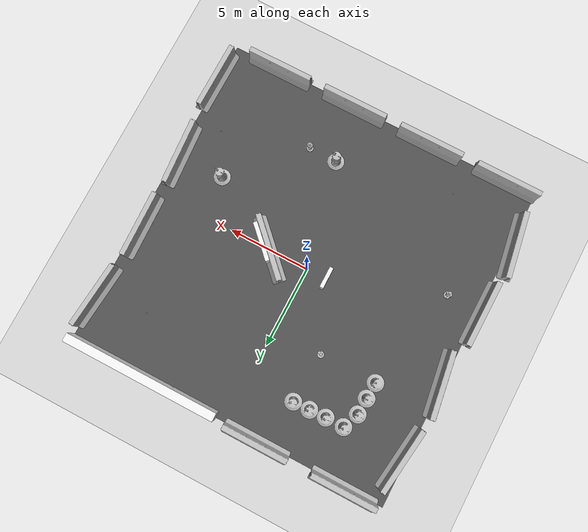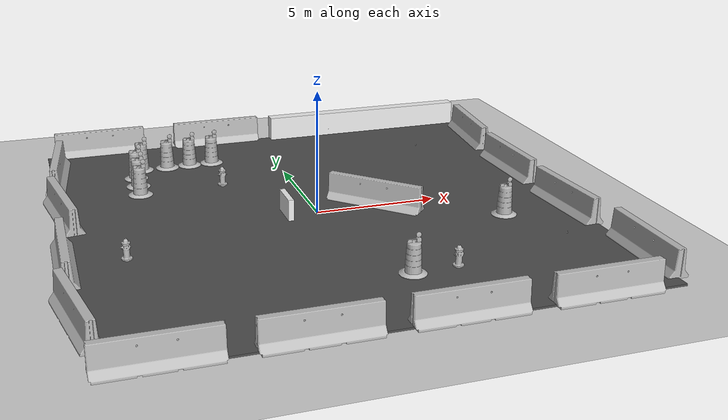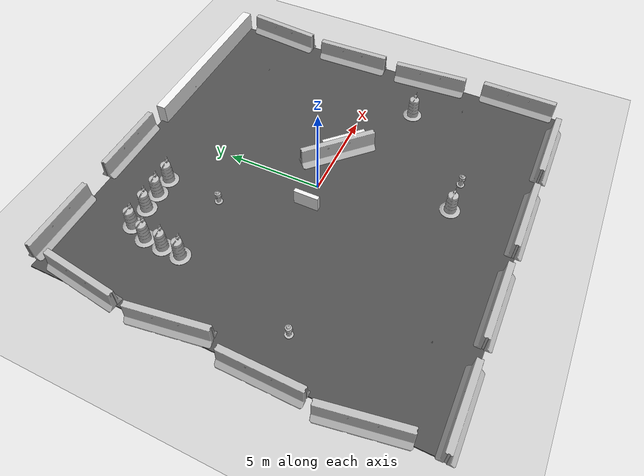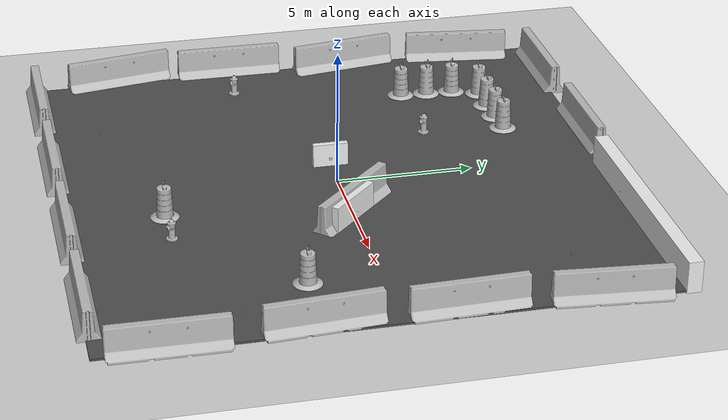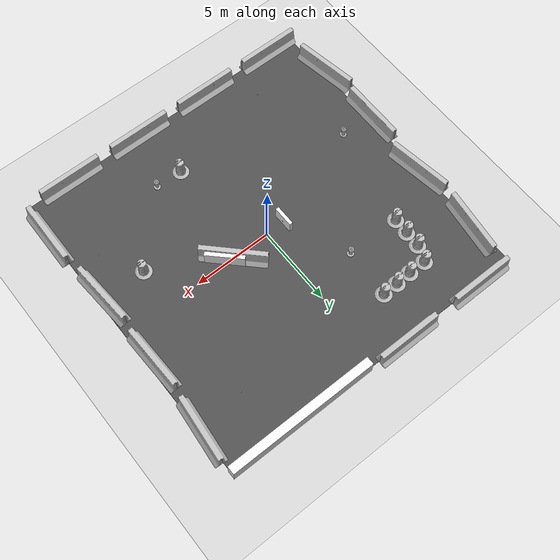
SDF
<sdf version="1.6">
 <world name="default">
  <light name="sun" type="directional">
   <pose>0 0 10 0 -0 0</pose>
   <diffuse>0.8 0.8 0.8 1</diffuse>
   <specular>0.2 0.2 0.2 1</specular>
   <attenuation>
    <range>1000</range>
    <constant>0.9</constant>
    <linear>0.01</linear>
    <quadratic>0.001</quadratic>
   </attenuation>
   <direction>-0.5 0.1 -0.9</direction>
  </light>
  <model name="ground_plane">
   <static>1</static>
   <link name="link">
    <collision name="collision">
     <geometry><plane><normal>0 0 1</normal><size>100 100</size></plane></geometry>
     <surface><friction><ode><mu>100</mu><mu2>50</mu2></ode></friction></surface>
    </collision>
    <visual name="visual">
     <cast_shadows>0</cast_shadows>
     <geometry><plane><normal>0 0 1</normal><size>100 100</size></plane></geometry>
     <material>
      <script><uri>file://media/materials/scripts/gazebo.material</uri><name>Gazebo/Grey</name></script>
     </material>
    </visual>
    <velocity_decay><linear>0</linear><angular>0</angular></velocity_decay>
   </link>
  </model>
  <physics name="default_physics" default="0" type="ode">
   <max_step_size>0.01</max_step_size>
   <real_time_factor>1</real_time_factor>
   <real_time_update_rate>100</real_time_update_rate>
  </physics>
  <scene><ambient>0.4 0.4 0.4 1</ambient><background>0.7 0.7 0.7 1</background><shadows>1</shadows></scene>
  <model name="jersey_barrier">
   <static>1</static>
   <link name="link">
    <visual name="visual">
     <geometry>
      <mesh><uri>model://jersey_barrier/meshes/jersey_barrier.dae</uri><scale>1 1 1</scale></mesh>
     </geometry>
    </visual>
    <collision name="upright">
     <pose>0 0 0.5715 0 -0 0</pose>
     <geometry><box><size>4.06542 0.3063 1.143</size></box></geometry>
    </collision>
    <collision name="base">
     <pose>0 0 0.032258 0 -0 0</pose>
     <geometry><box><size>4.06542 0.8107 0.064516</size></box></geometry>
    </collision>
    <collision name="base2">
     <pose>0 0 0.1 0 -0 0</pose>
     <geometry><box><size>4.06542 0.65 0.1</size></box></geometry>
    </collision>
    <collision name="base3">
     <pose>0 0 0.2 0 -0 0</pose>
     <geometry><box><size>4.06542 0.5 0.1</size></box></geometry>
    </collision>
    <collision name="left-angle">
     <pose>0 -0.224 0.2401 0.9 -0 0</pose>
     <geometry><box><size>4.06542 0.5 0.064516</size></box></geometry>
    </collision>
    <collision name="right-angle">
     <pose>0 0.224 0.2401 -0.9 0 0</pose>
     <geometry><box><size>4.06542 0.5 0.064516</size></box></geometry>
    </collision>
    <velocity_decay><linear>0</linear><angular>0</angular></velocity_decay>
   </link>
   <pose>-8 -10 0 0 -0 0</pose>
  </model>
  <model name="jersey_barrier_0">
   <static>1</static>
   <link name="link">
    <visual name="visual">
     <geometry>
      <mesh><uri>model://jersey_barrier/meshes/jersey_barrier.dae</uri><scale>1 1 1</scale></mesh>
     </geometry>
    </visual>
    <collision name="upright">
     <pose>0 0 0.5715 0 -0 0</pose>
     <geometry><box><size>4.06542 0.3063 1.143</size></box></geometry>
    </collision>
    <collision name="base">
     <pose>0 0 0.032258 0 -0 0</pose>
     <geometry><box><size>4.06542 0.8107 0.064516</size></box></geometry>
    </collision>
    <collision name="base2">
     <pose>0 0 0.1 0 -0 0</pose>
     <geometry><box><size>4.06542 0.65 0.1</size></box></geometry>
    </collision>
    <collision name="base3">
     <pose>0 0 0.2 0 -0 0</pose>
     <geometry><box><size>4.06542 0.5 0.1</size></box></geometry>
    </collision>
    <collision name="left-angle">
     <pose>0 -0.224 0.2401 0.9 -0 0</pose>
     <geometry><box><size>4.06542 0.5 0.064516</size></box></geometry>
    </collision>
    <collision name="right-angle">
     <pose>0 0.224 0.2401 -0.9 0 0</pose>
     <geometry><box><size>4.06542 0.5 0.064516</size></box></geometry>
    </collision>
    <velocity_decay><linear>0</linear><angular>0</angular></velocity_decay>
   </link>
   <pose>-3 -10 0 0 -0 0</pose>
  </model>
  <model name="jersey_barrier_1">
   <static>1</static>
   <link name="link">
    <visual name="visual">
     <geometry>
      <mesh><uri>model://jersey_barrier/meshes/jersey_barrier.dae</uri><scale>1 1 1</scale></mesh>
     </geometry>
    </visual>
    <collision name="upright">
     <pose>0 0 0.5715 0 -0 0</pose>
     <geometry><box><size>4.06542 0.3063 1.143</size></box></geometry>
    </collision>
    <collision name="base">
     <pose>0 0 0.032258 0 -0 0</pose>
     <geometry><box><size>4.06542 0.8107 0.064516</size></box></geometry>
    </collision>
    <collision name="base2">
     <pose>0 0 0.1 0 -0 0</pose>
     <geometry><box><size>4.06542 0.65 0.1</size></box></geometry>
    </collision>
    <collision name="base3">
     <pose>0 0 0.2 0 -0 0</pose>
     <geometry><box><size>4.06542 0.5 0.1</size></box></geometry>
    </collision>
    <collision name="left-angle">
     <pose>0 -0.224 0.2401 0.9 -0 0</pose>
     <geometry><box><size>4.06542 0.5 0.064516</size></box></geometry>
    </collision>
    <collision name="right-angle">
     <pose>0 0.224 0.2401 -0.9 0 0</pose>
     <geometry><box><size>4.06542 0.5 0.064516</size></box></geometry>
    </collision>
    <velocity_decay><linear>0</linear><angular>0</angular></velocity_decay>
   </link>
   <pose>2 -10 0 0 -0 0</pose>
  </model>
  <model name="jersey_barrier_2">
   <static>1</static>
   <link name="link">
    <visual name="visual">
     <geometry>
      <mesh><uri>model://jersey_barrier/meshes/jersey_barrier.dae</uri><scale>1 1 1</scale></mesh>
     </geometry>
    </visual>
    <collision name="upright">
     <pose>0 0 0.5715 0 -0 0</pose>
     <geometry><box><size>4.06542 0.3063 1.143</size></box></geometry>
    </collision>
    <collision name="base">
     <pose>0 0 0.032258 0 -0 0</pose>
     <geometry><box><size>4.06542 0.8107 0.064516</size></box></geometry>
    </collision>
    <collision name="base2">
     <pose>0 0 0.1 0 -0 0</pose>
     <geometry><box><size>4.06542 0.65 0.1</size></box></geometry>
    </collision>
    <collision name="base3">
     <pose>0 0 0.2 0 -0 0</pose>
     <geometry><box><size>4.06542 0.5 0.1</size></box></geometry>
    </collision>
    <collision name="left-angle">
     <pose>0 -0.224 0.2401 0.9 -0 0</pose>
     <geometry><box><size>4.06542 0.5 0.064516</size></box></geometry>
    </collision>
    <collision name="right-angle">
     <pose>0 0.224 0.2401 -0.9 0 0</pose>
     <geometry><box><size>4.06542 0.5 0.064516</size></box></geometry>
    </collision>
    <velocity_decay><linear>0</linear><angular>0</angular></velocity_decay>
   </link>
   <pose>7 -10 0 0 -0 0</pose>
  </model>
  <model name="jersey_barrier_3">
   <static>1</static>
   <link name="link">
    <visual name="visual">
     <geometry>
      <mesh><uri>model://jersey_barrier/meshes/jersey_barrier.dae</uri><scale>1 1 1</scale></mesh>
     </geometry>
    </visual>
    <collision name="upright">
     <pose>0 0 0.5715 0 -0 0</pose>
     <geometry><box><size>4.06542 0.3063 1.143</size></box></geometry>
    </collision>
    <collision name="base">
     <pose>0 0 0.032258 0 -0 0</pose>
     <geometry><box><size>4.06542 0.8107 0.064516</size></box></geometry>
    </collision>
    <collision name="base2">
     <pose>0 0 0.1 0 -0 0</pose>
     <geometry><box><size>4.06542 0.65 0.1</size></box></geometry>
    </collision>
    <collision name="base3">
     <pose>0 0 0.2 0 -0 0</pose>
     <geometry><box><size>4.06542 0.5 0.1</size></box></geometry>
    </collision>
    <collision name="left-angle">
     <pose>0 -0.224 0.2401 0.9 -0 0</pose>
     <geometry><box><size>4.06542 0.5 0.064516</size></box></geometry>
    </collision>
    <collision name="right-angle">
     <pose>0 0.224 0.2401 -0.9 0 0</pose>
     <geometry><box><size>4.06542 0.5 0.064516</size></box></geometry>
    </collision>
    <velocity_decay><linear>0</linear><angular>0</angular></velocity_decay>
   </link>
   <pose>-7.50675 10 0 0 -0 0</pose>
  </model>
  <model name="jersey_barrier_4">
   <static>1</static>
   <link name="link">
    <visual name="visual">
     <geometry>
      <mesh><uri>model://jersey_barrier/meshes/jersey_barrier.dae</uri><scale>1 1 1</scale></mesh>
     </geometry>
    </visual>
    <collision name="upright">
     <pose>0 0 0.5715 0 -0 0</pose>
     <geometry><box><size>4.06542 0.3063 1.143</size></box></geometry>
    </collision>
    <collision name="base">
     <pose>0 0 0.032258 0 -0 0</pose>
     <geometry><box><size>4.06542 0.8107 0.064516</size></box></geometry>
    </collision>
    <collision name="base2">
     <pose>0 0 0.1 0 -0 0</pose>
     <geometry><box><size>4.06542 0.65 0.1</size></box></geometry>
    </collision>
    <collision name="base3">
     <pose>0 0 0.2 0 -0 0</pose>
     <geometry><box><size>4.06542 0.5 0.1</size></box></geometry>
    </collision>
    <collision name="left-angle">
     <pose>0 -0.224 0.2401 0.9 -0 0</pose>
     <geometry><box><size>4.06542 0.5 0.064516</size></box></geometry>
    </collision>
    <collision name="right-angle">
     <pose>0 0.224 0.2401 -0.9 0 0</pose>
     <geometry><box><size>4.06542 0.5 0.064516</size></box></geometry>
    </collision>
    <velocity_decay><linear>0</linear><angular>0</angular></velocity_decay>
   </link>
   <pose>-2 10 0 0 -0 0</pose>
  </model>
  <model name="jersey_barrier_7">
   <static>1</static>
   <link name="link">
    <visual name="visual">
     <geometry>
      <mesh><uri>model://jersey_barrier/meshes/jersey_barrier.dae</uri><scale>1 1 1</scale></mesh>
     </geometry>
    </visual>
    <collision name="upright">
     <pose>0 0 0.5715 0 -0 0</pose>
     <geometry><box><size>4.06542 0.3063 1.143</size></box></geometry>
    </collision>
    <collision name="base">
     <pose>0 0 0.032258 0 -0 0</pose>
     <geometry><box><size>4.06542 0.8107 0.064516</size></box></geometry>
    </collision>
    <collision name="base2">
     <pose>0 0 0.1 0 -0 0</pose>
     <geometry><box><size>4.06542 0.65 0.1</size></box></geometry>
    </collision>
    <collision name="base3">
     <pose>0 0 0.2 0 -0 0</pose>
     <geometry><box><size>4.06542 0.5 0.1</size></box></geometry>
    </collision>
    <collision name="left-angle">
     <pose>0 -0.224 0.2401 0.9 -0 0</pose>
     <geometry><box><size>4.06542 0.5 0.064516</size></box></geometry>
    </collision>
    <collision name="right-angle">
     <pose>0 0.224 0.2401 -0.9 0 0</pose>
     <geometry><box><size>4.06542 0.5 0.064516</size></box></geometry>
    </collision>
    <velocity_decay><linear>0</linear><angular>0</angular></velocity_decay>
   </link>
   <pose>9.74902 -2.57759 0 0 -0 1.64</pose>
  </model>
  <model name="jersey_barrier_8">
   <static>1</static>
   <link name="link">
    <visual name="visual">
     <geometry>
      <mesh><uri>model://jersey_barrier/meshes/jersey_barrier.dae</uri><scale>1 1 1</scale></mesh>
     </geometry>
    </visual>
    <collision name="upright">
     <pose>0 0 0.5715 0 -0 0</pose>
     <geometry><box><size>4.06542 0.3063 1.143</size></box></geometry>
    </collision>
    <collision name="base">
     <pose>0 0 0.032258 0 -0 0</pose>
     <geometry><box><size>4.06542 0.8107 0.064516</size></box></geometry>
    </collision>
    <collision name="base2">
     <pose>0 0 0.1 0 -0 0</pose>
     <geometry><box><size>4.06542 0.65 0.1</size></box></geometry>
    </collision>
    <collision name="base3">
     <pose>0 0 0.2 0 -0 0</pose>
     <geometry><box><size>4.06542 0.5 0.1</size></box></geometry>
    </collision>
    <collision name="left-angle">
     <pose>0 -0.224 0.2401 0.9 -0 0</pose>
     <geometry><box><size>4.06542 0.5 0.064516</size></box></geometry>
    </collision>
    <collision name="right-angle">
     <pose>0 0.224 0.2401 -0.9 0 0</pose>
     <geometry><box><size>4.06542 0.5 0.064516</size></box></geometry>
    </collision>
    <velocity_decay><linear>0</linear><angular>0</angular></velocity_decay>
   </link>
   <pose>9.70141 2.24369 0 0 -0 1.6</pose>
  </model>
  <model name="jersey_barrier_9">
   <static>1</static>
   <link name="link">
    <visual name="visual">
     <geometry>
      <mesh><uri>model://jersey_barrier/meshes/jersey_barrier.dae</uri><scale>1 1 1</scale></mesh>
     </geometry>
    </visual>
    <collision name="upright">
     <pose>0 0 0.5715 0 -0 0</pose>
     <geometry><box><size>4.06542 0.3063 1.143</size></box></geometry>
    </collision>
    <collision name="base">
     <pose>0 0 0.032258 0 -0 0</pose>
     <geometry><box><size>4.06542 0.8107 0.064516</size></box></geometry>
    </collision>
    <collision name="base2">
     <pose>0 0 0.1 0 -0 0</pose>
     <geometry><box><size>4.06542 0.65 0.1</size></box></geometry>
    </collision>
    <collision name="base3">
     <pose>0 0 0.2 0 -0 0</pose>
     <geometry><box><size>4.06542 0.5 0.1</size></box></geometry>
    </collision>
    <collision name="left-angle">
     <pose>0 -0.224 0.2401 0.9 -0 0</pose>
     <geometry><box><size>4.06542 0.5 0.064516</size></box></geometry>
    </collision>
    <collision name="right-angle">
     <pose>0 0.224 0.2401 -0.9 0 0</pose>
     <geometry><box><size>4.06542 0.5 0.064516</size></box></geometry>
    </collision>
    <velocity_decay><linear>0</linear><angular>0</angular></velocity_decay>
   </link>
   <pose>-10.0607 -6.69856 0 0 0 -1.4</pose>
  </model>
  <model name="jersey_barrier_10">
   <static>1</static>
   <link name="link">
    <visual name="visual">
     <geometry>
      <mesh><uri>model://jersey_barrier/meshes/jersey_barrier.dae</uri><scale>1 1 1</scale></mesh>
     </geometry>
    </visual>
    <collision name="upright">
     <pose>0 0 0.5715 0 -0 0</pose>
     <geometry><box><size>4.06542 0.3063 1.143</size></box></geometry>
    </collision>
    <collision name="base">
     <pose>0 0 0.032258 0 -0 0</pose>
     <geometry><box><size>4.06542 0.8107 0.064516</size></box></geometry>
    </collision>
    <collision name="base2">
     <pose>0 0 0.1 0 -0 0</pose>
     <geometry><box><size>4.06542 0.65 0.1</size></box></geometry>
    </collision>
    <collision name="base3">
     <pose>0 0 0.2 0 -0 0</pose>
     <geometry><box><size>4.06542 0.5 0.1</size></box></geometry>
    </collision>
    <collision name="left-angle">
     <pose>0 -0.224 0.2401 0.9 -0 0</pose>
     <geometry><box><size>4.06542 0.5 0.064516</size></box></geometry>
    </collision>
    <collision name="right-angle">
     <pose>0 0.224 0.2401 -0.9 0 0</pose>
     <geometry><box><size>4.06542 0.5 0.064516</size></box></geometry>
    </collision>
    <velocity_decay><linear>0</linear><angular>0</angular></velocity_decay>
   </link>
   <pose>-10.0774 -2.27159 0 0 -0 1.56</pose>
  </model>
  <model name="jersey_barrier_11">
   <static>1</static>
   <link name="link">
    <visual name="visual">
     <geometry>
      <mesh><uri>model://jersey_barrier/meshes/jersey_barrier.dae</uri><scale>1 1 1</scale></mesh>
     </geometry>
    </visual>
    <collision name="upright">
     <pose>0 0 0.5715 0 -0 0</pose>
     <geometry><box><size>4.06542 0.3063 1.143</size></box></geometry>
    </collision>
    <collision name="base">
     <pose>0 0 0.032258 0 -0 0</pose>
     <geometry><box><size>4.06542 0.8107 0.064516</size></box></geometry>
    </collision>
    <collision name="base2">
     <pose>0 0 0.1 0 -0 0</pose>
     <geometry><box><size>4.06542 0.65 0.1</size></box></geometry>
    </collision>
    <collision name="base3">
     <pose>0 0 0.2 0 -0 0</pose>
     <geometry><box><size>4.06542 0.5 0.1</size></box></geometry>
    </collision>
    <collision name="left-angle">
     <pose>0 -0.224 0.2401 0.9 -0 0</pose>
     <geometry><box><size>4.06542 0.5 0.064516</size></box></geometry>
    </collision>
    <collision name="right-angle">
     <pose>0 0.224 0.2401 -0.9 0 0</pose>
     <geometry><box><size>4.06542 0.5 0.064516</size></box></geometry>
    </collision>
    <velocity_decay><linear>0</linear><angular>0</angular></velocity_decay>
   </link>
   <pose>-9.77013 2.34791 0 0 -0 1.72</pose>
  </model>
  <model name="jersey_barrier_12">
   <static>1</static>
   <link name="link">
    <visual name="visual">
     <geometry>
      <mesh><uri>model://jersey_barrier/meshes/jersey_barrier.dae</uri><scale>1 1 1</scale></mesh>
     </geometry>
    </visual>
    <collision name="upright">
     <pose>0 0 0.5715 0 -0 0</pose>
     <geometry><box><size>4.06542 0.3063 1.143</size></box></geometry>
    </collision>
    <collision name="base">
     <pose>0 0 0.032258 0 -0 0</pose>
     <geometry><box><size>4.06542 0.8107 0.064516</size></box></geometry>
    </collision>
    <collision name="base2">
     <pose>0 0 0.1 0 -0 0</pose>
     <geometry><box><size>4.06542 0.65 0.1</size></box></geometry>
    </collision>
    <collision name="base3">
     <pose>0 0 0.2 0 -0 0</pose>
     <geometry><box><size>4.06542 0.5 0.1</size></box></geometry>
    </collision>
    <collision name="left-angle">
     <pose>0 -0.224 0.2401 0.9 -0 0</pose>
     <geometry><box><size>4.06542 0.5 0.064516</size></box></geometry>
    </collision>
    <collision name="right-angle">
     <pose>0 0.224 0.2401 -0.9 0 0</pose>
     <geometry><box><size>4.06542 0.5 0.064516</size></box></geometry>
    </collision>
    <velocity_decay><linear>0</linear><angular>0</angular></velocity_decay>
   </link>
   <pose>10.0879 -7.62159 0 0 -0 1.56</pose>
  </model>
  <model name="jersey_barrier_13">
   <static>1</static>
   <link name="link">
    <visual name="visual">
     <geometry>
      <mesh><uri>model://jersey_barrier/meshes/jersey_barrier.dae</uri><scale>1 1 1</scale></mesh>
     </geometry>
    </visual>
    <collision name="upright">
     <pose>0 0 0.5715 0 -0 0</pose>
     <geometry><box><size>4.06542 0.3063 1.143</size></box></geometry>
    </collision>
    <collision name="base">
     <pose>0 0 0.032258 0 -0 0</pose>
     <geometry><box><size>4.06542 0.8107 0.064516</size></box></geometry>
    </collision>
    <collision name="base2">
     <pose>0 0 0.1 0 -0 0</pose>
     <geometry><box><size>4.06542 0.65 0.1</size></box></geometry>
    </collision>
    <collision name="base3">
     <pose>0 0 0.2 0 -0 0</pose>
     <geometry><box><size>4.06542 0.5 0.1</size></box></geometry>
    </collision>
    <collision name="left-angle">
     <pose>0 -0.224 0.2401 0.9 -0 0</pose>
     <geometry><box><size>4.06542 0.5 0.064516</size></box></geometry>
    </collision>
    <collision name="right-angle">
     <pose>0 0.224 0.2401 -0.9 0 0</pose>
     <geometry><box><size>4.06542 0.5 0.064516</size></box></geometry>
    </collision>
    <velocity_decay><linear>0</linear><angular>0</angular></velocity_decay>
   </link>
   <pose>10 7 0 0 -0 1.48</pose>
  </model>
  <model name="jersey_barrier_14">
   <static>1</static>
   <link name="link">
    <visual name="visual">
     <geometry>
      <mesh><uri>model://jersey_barrier/meshes/jersey_barrier.dae</uri><scale>1 1 1</scale></mesh>
     </geometry>
    </visual>
    <collision name="upright">
     <pose>0 0 0.5715 0 -0 0</pose>
     <geometry><box><size>4.06542 0.3063 1.143</size></box></geometry>
    </collision>
    <collision name="base">
     <pose>0 0 0.032258 0 -0 0</pose>
     <geometry><box><size>4.06542 0.8107 0.064516</size></box></geometry>
    </collision>
    <collision name="base2">
     <pose>0 0 0.1 0 -0 0</pose>
     <geometry><box><size>4.06542 0.65 0.1</size></box></geometry>
    </collision>
    <collision name="base3">
     <pose>0 0 0.2 0 -0 0</pose>
     <geometry><box><size>4.06542 0.5 0.1</size></box></geometry>
    </collision>
    <collision name="left-angle">
     <pose>0 -0.224 0.2401 0.9 -0 0</pose>
     <geometry><box><size>4.06542 0.5 0.064516</size></box></geometry>
    </collision>
    <collision name="right-angle">
     <pose>0 0.224 0.2401 -0.9 0 0</pose>
     <geometry><box><size>4.06542 0.5 0.064516</size></box></geometry>
    </collision>
    <velocity_decay><linear>0</linear><angular>0</angular></velocity_decay>
   </link>
   <pose>-9.64482 7.05946 0 0 -0 1.44</pose>
  </model>
  <model name="fire_hydrant">
   <static>1</static>
   <link name="link">
    <collision name="collision">
     <geometry><mesh><uri>model://fire_hydrant/meshes/fire_hydrant.dae</uri><scale>1 1 1</scale></mesh></geometry>
    </collision>
    <visual name="visual">
     <geometry><mesh><uri>model://fire_hydrant/meshes/fire_hydrant.dae</uri><scale>1 1 1</scale></mesh></geometry>
    </visual>
    <velocity_decay><linear>0</linear><angular>0</angular></velocity_decay>
   </link>
   <pose>3.18024 -6.51118 0 0 -0 0</pose>
  </model>
  <model name="fire_hydrant_0">
   <static>1</static>
   <link name="link">
    <collision name="collision">
     <geometry><mesh><uri>model://fire_hydrant/meshes/fire_hydrant.dae</uri><scale>1 1 1</scale></mesh></geometry>
    </collision>
    <visual name="visual">
     <geometry><mesh><uri>model://fire_hydrant/meshes/fire_hydrant.dae</uri><scale>1 1 1</scale></mesh></geometry>
    </visual>
    <velocity_decay><linear>0</linear><angular>0</angular></velocity_decay>
   </link>
   <pose>-3 4 0 0 -0 0</pose>
  </model>
  <model name="fire_hydrant_1">
   <static>1</static>
   <link name="link">
    <collision name="collision">
     <geometry><mesh><uri>model://fire_hydrant/meshes/fire_hydrant.dae</uri><scale>1 1 1</scale></mesh></geometry>
    </collision>
    <visual name="visual">
     <geometry><mesh><uri>model://fire_hydrant/meshes/fire_hydrant.dae</uri><scale>1 1 1</scale></mesh></geometry>
    </visual>
    <velocity_decay><linear>0</linear><angular>0</angular></velocity_decay>
   </link>
   <pose>-7.90686 -2.41363 0 0 -0 0</pose>
  </model>
  <model name="jersey_barrier_15">
   <static>1</static>
   <link name="link">
    <visual name="visual">
     <geometry>
      <mesh><uri>model://jersey_barrier/meshes/jersey_barrier.dae</uri><scale>1 1 1</scale></mesh>
     </geometry>
    </visual>
    <collision name="upright">
     <pose>0 0 0.5715 0 -0 0</pose>
     <geometry><box><size>4.06542 0.3063 1.143</size></box></geometry>
    </collision>
    <collision name="base">
     <pose>0 0 0.032258 0 -0 0</pose>
     <geometry><box><size>4.06542 0.8107 0.064516</size></box></geometry>
    </collision>
    <collision name="base2">
     <pose>0 0 0.1 0 -0 0</pose>
     <geometry><box><size>4.06542 0.65 0.1</size></box></geometry>
    </collision>
    <collision name="base3">
     <pose>0 0 0.2 0 -0 0</pose>
     <geometry><box><size>4.06542 0.5 0.1</size></box></geometry>
    </collision>
    <collision name="left-angle">
     <pose>0 -0.224 0.2401 0.9 -0 0</pose>
     <geometry><box><size>4.06542 0.5 0.064516</size></box></geometry>
    </collision>
    <collision name="right-angle">
     <pose>0 0.224 0.2401 -0.9 0 0</pose>
     <geometry><box><size>4.06542 0.5 0.064516</size></box></geometry>
    </collision>
    <velocity_decay><linear>0</linear><angular>0</angular></velocity_decay>
   </link>
   <pose>2.45495 0 0 0 -0 2.36</pose>
  </model>
  <model name="Construction Cone">
   <link name="link">
    <collision name="collision">
     <geometry>
      <mesh><scale>1 1 1</scale><uri>model://construction_cone/meshes/construction_cone.dae</uri></mesh>
     </geometry>
    </collision>
    <visual name="visual">
     <geometry>
      <mesh><scale>1 1 1</scale><uri>model://construction_cone/meshes/construction_cone.dae</uri></mesh>
     </geometry>
    </visual>
    <velocity_decay><linear>0</linear><angular>0</angular></velocity_decay>
    <inertial>
     <inertia><ixx>1</ixx><ixy>0</ixy><ixz>0</ixz><iyy>1</iyy><iyz>0</iyz><izz>1</izz></inertia>
     <mass>1</mass>
    </inertial>
   </link>
   <pose>-5.59121 -8 0.05031 0.006344 -0.00804 -0.000153</pose>
   <static>0</static>
  </model>
  <model name="Construction Barrel">
   <link name="link">
    <inertial>
     <pose>0 0 0.4 0 -0 0</pose>
     <mass>500</mass>
     <inertia><ixx>51.2096</ixx><iyy>51.2096</iyy><izz>25</izz><ixy>0</ixy><ixz>0</ixz><iyz>0</iyz></inertia>
    </inertial>
    <collision name="collision">
     <geometry>
      <mesh><uri>model://construction_barrel/meshes/construction_barrel.dae</uri><scale>1 1 1</scale></mesh>
     </geometry>
    </collision>
    <visual name="visual">
     <geometry>
      <mesh><uri>model://construction_barrel/meshes/construction_barrel.dae</uri><scale>1 1 1</scale></mesh>
     </geometry>
    </visual>
    <velocity_decay><linear>0</linear><angular>0</angular></velocity_decay>
   </link>
   <pose>7.00014 -2.54608 0.049893 -0.00021 -0.000392 2.1e-05</pose>
   <static>0</static>
  </model>
  <model name="Construction Cone_0">
   <link name="link">
    <collision name="collision">
     <geometry>
      <mesh><scale>1 1 1</scale><uri>model://construction_cone/meshes/construction_cone.dae</uri></mesh>
     </geometry>
    </collision>
    <visual name="visual">
     <geometry>
      <mesh><scale>1 1 1</scale><uri>model://construction_cone/meshes/construction_cone.dae</uri></mesh>
     </geometry>
    </visual>
    <velocity_decay><linear>0</linear><angular>0</angular></velocity_decay>
    <inertial>
     <inertia><ixx>1</ixx><ixy>0</ixy><ixz>0</ixz><iyy>1</iyy><iyz>0</iyz><izz>1</izz></inertia>
     <mass>1</mass>
    </inertial>
   </link>
   <pose>6.99685 6.55732 0.05031 0.006344 -0.00804 -0.007165</pose>
   <static>0</static>
  </model>
  <model name="Construction Barrel_0">
   <link name="link">
    <inertial>
     <pose>0 0 0.4 0 -0 0</pose>
     <mass>500</mass>
     <inertia><ixx>51.2096</ixx><iyy>51.2096</iyy><izz>25</izz><ixy>0</ixy><ixz>0</ixz><iyz>0</iyz></inertia>
    </inertial>
    <collision name="collision">
     <geometry>
      <mesh><uri>model://construction_barrel/meshes/construction_barrel.dae</uri><scale>1 1 1</scale></mesh>
     </geometry>
    </collision>
    <visual name="visual">
     <geometry>
      <mesh><uri>model://construction_barrel/meshes/construction_barrel.dae</uri><scale>1 1 1</scale></mesh>
     </geometry>
    </visual>
    <velocity_decay><linear>0</linear><angular>0</angular></velocity_decay>
   </link>
   <pose>1.45186 -6.51101 0.049905 0.000411 -2.3e-05 -0.000341</pose>
   <static>0</static>
  </model>
  <model name="asphalt_plane">
   <static>1</static>
   <link name="link">
    <collision name="collision"><geometry><box><size>20 20 0.1</size></box></geometry></collision>
    <visual name="visual">
     <cast_shadows>0</cast_shadows>
     <geometry><box><size>20 20 0.1</size></box></geometry>
     <material>
      <script>
       <uri>model://asphalt_plane/materials/scripts</uri>
       <uri>model://asphalt_plane/materials/textures</uri>
       <name>vrc/asphalt</name>
      </script>
     </material>
    </visual>
    <velocity_decay><linear>0</linear><angular>0</angular></velocity_decay>
   </link>
   <pose>0.076733 -0.110379 0 0 -0 0</pose>
  </model>
  <model name="Construction Barrel_1">
   <link name="link">
    <inertial>
     <pose>0 0 0.4 0 -0 0</pose>
     <mass>500</mass>
     <inertia><ixx>51.2096</ixx><iyy>51.2096</iyy><izz>25</izz><ixy>0</ixy><ixz>0</ixz><iyz>0</iyz></inertia>
    </inertial>
    <collision name="collision">
     <geometry>
      <mesh><uri>model://construction_barrel/meshes/construction_barrel.dae</uri><scale>1 1 1</scale></mesh>
     </geometry>
    </collision>
    <visual name="visual">
     <geometry>
      <mesh><uri>model://construction_barrel/meshes/construction_barrel.dae</uri><scale>1 1 1</scale></mesh>
     </geometry>
    </visual>
    <velocity_decay><linear>0</linear><angular>0</angular></velocity_decay>
   </link>
   <pose>-6.50423 3.98329 0.049884 -0.000115 -0.000453 -0.009379</pose>
   <static>0</static>
  </model>
  <model name="Construction Barrel_2">
   <link name="link">
    <inertial>
     <pose>0 0 0.4 0 -0 0</pose>
     <mass>500</mass>
     <inertia><ixx>51.2096</ixx><iyy>51.2096</iyy><izz>25</izz><ixy>0</ixy><ixz>0</ixz><iyz>0</iyz></inertia>
    </inertial>
    <collision name="collision">
     <geometry>
      <mesh><uri>model://construction_barrel/meshes/construction_barrel.dae</uri><scale>1 1 1</scale></mesh>
     </geometry>
    </collision>
    <visual name="visual">
     <geometry>
      <mesh><uri>model://construction_barrel/meshes/construction_barrel.dae</uri><scale>1 1 1</scale></mesh>
     </geometry>
    </visual>
    <velocity_decay><linear>0</linear><angular>0</angular></velocity_decay>
   </link>
   <pose>-6.45052 4.99667 0.049889 0.000457 -1.2e-05 0.064686</pose>
   <static>0</static>
  </model>
  <model name="Construction Barrel_3">
   <link name="link">
    <inertial>
     <pose>0 0 0.4 0 -0 0</pose>
     <mass>500</mass>
     <inertia><ixx>51.2096</ixx><iyy>51.2096</iyy><izz>25</izz><ixy>0</ixy><ixz>0</ixz><iyz>0</iyz></inertia>
    </inertial>
    <collision name="collision">
     <geometry>
      <mesh><uri>model://construction_barrel/meshes/construction_barrel.dae</uri><scale>1 1 1</scale></mesh>
     </geometry>
    </collision>
    <visual name="visual">
     <geometry>
      <mesh><uri>model://construction_barrel/meshes/construction_barrel.dae</uri><scale>1 1 1</scale></mesh>
     </geometry>
    </visual>
    <velocity_decay><linear>0</linear><angular>0</angular></velocity_decay>
   </link>
   <pose>-6.4016 6.01145 0.049928 0.000333 5.5e-05 -0.120816</pose>
   <static>0</static>
  </model>
  <model name="Construction Barrel_4">
   <link name="link">
    <inertial>
     <pose>0 0 0.4 0 -0 0</pose>
     <mass>500</mass>
     <inertia><ixx>51.2096</ixx><iyy>51.2096</iyy><izz>25</izz><ixy>0</ixy><ixz>0</ixz><iyz>0</iyz></inertia>
    </inertial>
    <collision name="collision">
     <geometry>
      <mesh><uri>model://construction_barrel/meshes/construction_barrel.dae</uri><scale>1 1 1</scale></mesh>
     </geometry>
    </collision>
    <visual name="visual">
     <geometry>
      <mesh><uri>model://construction_barrel/meshes/construction_barrel.dae</uri><scale>1 1 1</scale></mesh>
     </geometry>
    </visual>
    <velocity_decay><linear>0</linear><angular>0</angular></velocity_decay>
   </link>
   <pose>-6.00589 7.00942 0.049893 -0.000102 -0.000428 -0.049408</pose>
   <static>0</static>
  </model>
  <model name="Construction Barrel_5">
   <link name="link">
    <inertial>
     <pose>0 0 0.4 0 -0 0</pose>
     <mass>500</mass>
     <inertia><ixx>51.2096</ixx><iyy>51.2096</iyy><izz>25</izz><ixy>0</ixy><ixz>0</ixz><iyz>0</iyz></inertia>
    </inertial>
    <collision name="collision">
     <geometry>
      <mesh><uri>model://construction_barrel/meshes/construction_barrel.dae</uri><scale>1 1 1</scale></mesh>
     </geometry>
    </collision>
    <visual name="visual">
     <geometry>
      <mesh><uri>model://construction_barrel/meshes/construction_barrel.dae</uri><scale>1 1 1</scale></mesh>
     </geometry>
    </visual>
    <velocity_decay><linear>0</linear><angular>0</angular></velocity_decay>
   </link>
   <pose>-4.87558 7.00864 0.049864 -2.3e-05 -0.000492 0.14597</pose>
   <static>0</static>
  </model>
  <model name="Construction Barrel_6">
   <link name="link">
    <inertial>
     <pose>0 0 0.4 0 -0 0</pose>
     <mass>500</mass>
     <inertia><ixx>51.2096</ixx><iyy>51.2096</iyy><izz>25</izz><ixy>0</ixy><ixz>0</ixz><iyz>0</iyz></inertia>
    </inertial>
    <collision name="collision">
     <geometry>
      <mesh><uri>model://construction_barrel/meshes/construction_barrel.dae</uri><scale>1 1 1</scale></mesh>
     </geometry>
    </collision>
    <visual name="visual">
     <geometry>
      <mesh><uri>model://construction_barrel/meshes/construction_barrel.dae</uri><scale>1 1 1</scale></mesh>
     </geometry>
    </visual>
    <velocity_decay><linear>0</linear><angular>0</angular></velocity_decay>
   </link>
   <pose>-3.86064 7.04839 0.049913 2e-06 -0.000342 0.032775</pose>
   <static>0</static>
  </model>
  <model name="Construction Barrel_7">
   <link name="link">
    <inertial>
     <pose>0 0 0.4 0 -0 0</pose>
     <mass>500</mass>
     <inertia><ixx>51.2096</ixx><iyy>51.2096</iyy><izz>25</izz><ixy>0</ixy><ixz>0</ixz><iyz>0</iyz></inertia>
    </inertial>
    <collision name="collision">
     <geometry>
      <mesh><uri>model://construction_barrel/meshes/construction_barrel.dae</uri><scale>1 1 1</scale></mesh>
     </geometry>
    </collision>
    <visual name="visual">
     <geometry>
      <mesh><uri>model://construction_barrel/meshes/construction_barrel.dae</uri><scale>1 1 1</scale></mesh>
     </geometry>
    </visual>
    <velocity_decay><linear>0</linear><angular>0</angular></velocity_decay>
   </link>
   <pose>-2.8433 7.07602 0.049896 0.000418 0.000102 0.070691</pose>
   <static>0</static>
  </model>
  <model name="Construction Cone_1">
   <link name="link">
    <collision name="collision">
     <geometry>
      <mesh><scale>1 1 1</scale><uri>model://construction_cone/meshes/construction_cone.dae</uri></mesh>
     </geometry>
    </collision>
    <visual name="visual">
     <geometry>
      <mesh><scale>1 1 1</scale><uri>model://construction_cone/meshes/construction_cone.dae</uri></mesh>
     </geometry>
    </visual>
    <velocity_decay><linear>0</linear><angular>0</angular></velocity_decay>
    <inertial>
     <inertia><ixx>1</ixx><ixy>0</ixy><ixz>0</ixz><iyy>1</iyy><iyz>0</iyz><izz>1</izz></inertia>
     <mass>1</mass>
    </inertial>
   </link>
   <pose>8.42887 -5 0.05031 0.006344 -0.00804 -0.000154</pose>
   <static>0</static>
  </model>
  <gravity>0 0 -9.8</gravity>
  <magnetic_field>6e-06 2.3e-05 -4.2e-05</magnetic_field>
  <atmosphere type="adiabatic"/>
  <spherical_coordinates>
   <surface_model>EARTH_WGS84</surface_model>
   <latitude_deg>0</latitude_deg>
   <longitude_deg>0</longitude_deg>
   <elevation>0</elevation>
   <heading_deg>0</heading_deg>
  </spherical_coordinates>
  <model name="35mm_Apriltag36_11_00000_0_1">
   <link name="main">
    <inertial>
     <mass>1</mass>
     <inertia><ixx>1</ixx><ixy>0</ixy><ixz>0</ixz><iyy>1</iyy><iyz>0</iyz><izz>1</izz></inertia>
    </inertial>
    <visual name="main_Visual">
     <geometry><box><size>0.035 0.035 0.0001</size></box></geometry>
     <material>
      <script>
       <uri>model://Apriltag36_11_00000/materials/scripts</uri>
       <uri>model://Apriltag36_11_00000/materials/textures</uri>
       <name>Apriltag36_11_00000</name>
      </script>
      <ambient>1 1 1 1</ambient>
      <diffuse>1 1 1 1</diffuse>
      <specular>0 0 0 1</specular>
      <emissive>0 0 0 1</emissive>
      <shader type="vertex"><normal_map>__default__</normal_map></shader>
     </material>
    </visual>
   </link>
   <static>1</static>
   <pose>3.55346 9.50301 0.334998 -1.57079 1.57079 3.14159</pose>
  </model>
  <model name="35mm_Apriltag36_11_00000_0_2">
   <link name="main">
    <inertial>
     <mass>1</mass>
     <inertia><ixx>1</ixx><ixy>0</ixy><ixz>0</ixz><iyy>1</iyy><iyz>0</iyz><izz>1</izz></inertia>
    </inertial>
    <visual name="main_Visual">
     <geometry><box><size>0.035 0.035 0.0001</size></box></geometry>
     <material>
      <script>
       <uri>model://Apriltag36_11_00000/materials/scripts</uri>
       <uri>model://Apriltag36_11_00000/materials/textures</uri>
       <name>Apriltag36_11_00000</name>
      </script>
      <ambient>1 1 1 1</ambient>
      <diffuse>1 1 1 1</diffuse>
      <specular>0 0 0 1</specular>
      <emissive>0 0 0 1</emissive>
      <shader type="vertex"><normal_map>__default__</normal_map></shader>
     </material>
    </visual>
   </link>
   <static>1</static>
   <pose>3.0019 0.059844 0.335 2.28514 1.57079 3.07075</pose>
  </model>
  <model name="white_wall">
   <link name="white_wall::link">
    <visual name="visual">
     <geometry><box><size>9.523 0.522945 2.2418</size></box></geometry>
     <material>
      <script><name>Gazebo/White</name><uri>file://media/materials/scripts/gazebo.material</uri></script>
     </material>
    </visual>
   </link>
   <static>1</static>
   <pose>5.38866 9.76535 0 0 -0 0</pose>
  </model>
  <model name="white_wall_0">
   <link name="white_wall::link">
    <visual name="visual">
     <geometry><box><size>2.36558 0.254477 0.956261</size></box></geometry>
     <material>
      <script><name>Gazebo/White</name><uri>file://media/materials/scripts/gazebo.material</uri></script>
     </material>
    </visual>
   </link>
   <static>1</static>
   <pose>2.98659 -0.104972 0.548017 0 0 -0.77492</pose>
  </model>
  <model name="white_wall_1">
   <link name="white_wall::link">
    <visual name="visual">
     <geometry><box><size>0.224054 1.29707 1.84275</size></box></geometry>
     <material>
      <script><name>Gazebo/White</name><uri>file://media/materials/scripts/gazebo.material</uri></script>
     </material>
    </visual>
   </link>
   <static>1</static>
   <pose>-1.27463 0 0 0 -0 0</pose>
  </model>
  <model name="Apriltag36_11_bundle_0_4">
   <link name="main">
    <visual name="main_Visual">
     <geometry><box><size>0.105 0.105 0.120557</size></box></geometry>
     <material>
      <script>
       <uri>model://Apriltag36_11_bundle_0_4/materials/scripts</uri>
       <uri>model://Apriltag36_11_bundle_0_4/materials/textures</uri>
       <name>Apriltag36_11_bundle_0_4</name>
      </script>
     </material>
    </visual>
   </link>
   <static>1</static>
   <pose>-1.22263 0 0.34 3.14159 1.57079 3.14159</pose>
  </model>
 </world>
</sdf>
